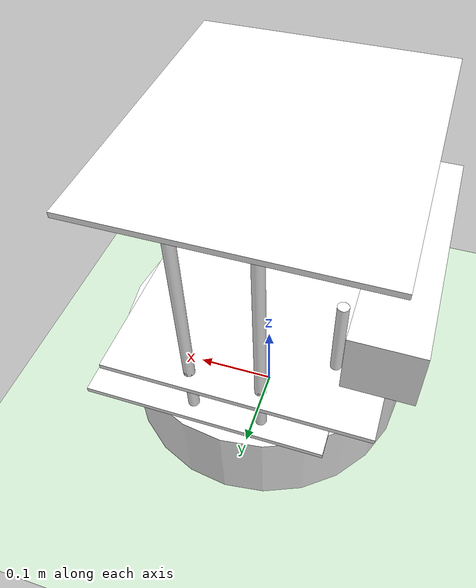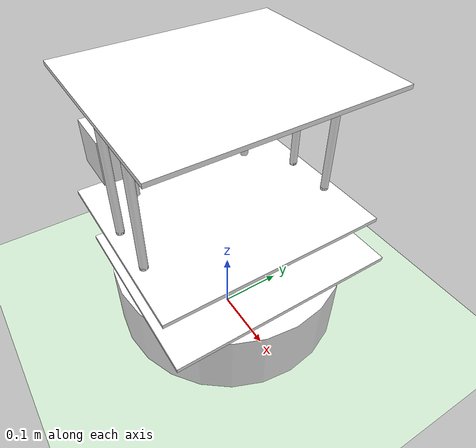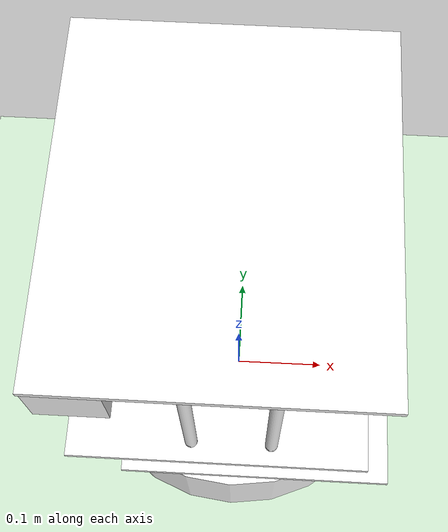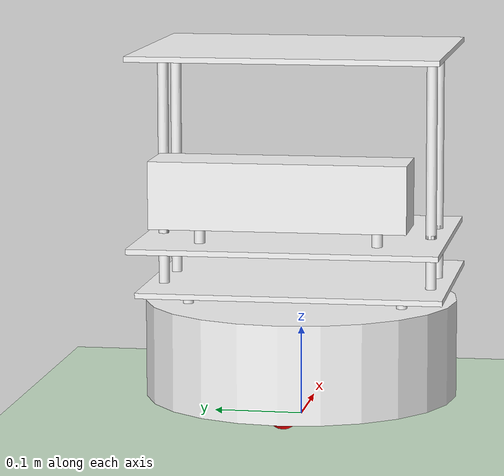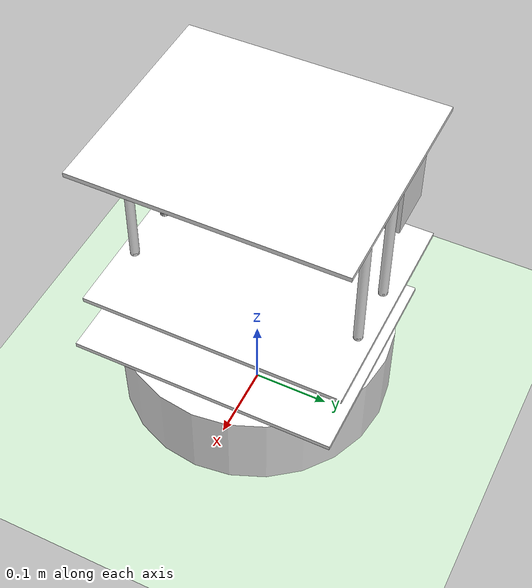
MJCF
<mujoco model="turtlebot">
    <compiler angle="radian" />
    <size njmax="500" nconmax="100" nuserdata="100" nuser_actuator="8" />

    <default>
        <geom condim="6" density="5" rgba="1 0 0 1" size=".05" type="sphere"/>
        <joint damping=".001"/>
        <motor ctrlrange="-1 1" ctrllimited="true" forcerange="-.02 .02" forcelimited="true"/>
        <site size="0.032" type="sphere"/>
    </default>

    <asset>
        <texture builtin="gradient" height="100" rgb1=".4 .5 .6" rgb2="0 0 0" type="skybox" width="100" />
        <texture builtin="flat" height="1278" mark="cross" markrgb="1 1 1" name="texgeom" random="0.01" rgb1="0.8 0.6 0.4" rgb2="0.8 0.6 0.4" type="cube" width="127" />
        <texture builtin="checker" height="100" name="texplane" rgb1="0 0 0" rgb2="0.8 0.8 0.8" type="2d" width="100" />
        <material name="MatPlane" reflectance="0.5" shininess="1" specular="1" texrepeat="60 60" texture="texplane" />
        <material name="geom" texture="texgeom" texuniform="true" />
    </asset>

    <worldbody>
        <light cutoff="100" diffuse="1 1 1" dir="-0 0 -1.3" directional="true" exponent="1" pos="0 0 1.3" specular=".1 .1 .1" />
        <geom condim="6" material="MatPlane" name="floor" pos="0 0 0" rgba="0.8 0.9 0.8 1" size="20 20 .125" type="plane" />

        <body name="turtlebot" pos="0 0 0.02">
            <joint type="free" />
            <site name="turtlebot" pos="0 0 0"/>
            <geom size="0.176 0.05469" pos="0 0 0.05949" type="cylinder" rgba="1 1 1 1" />
            <geom size="0.006 0.0246" pos="0.12 0.082 0.1028" type="cylinder" rgba="1 1 1 1" />
            <geom size="0.006 0.0246" pos="0.055 0.12 0.1028" type="cylinder" rgba="1 1 1 1" />
            <geom size="0.006 0.0246" pos="-0.055 0.12 0.1028" type="cylinder" rgba="1 1 1 1" />
            <geom size="0.006 0.0246" pos="0.12 -0.082 0.1028" type="cylinder" rgba="1 1 1 1" />
            <geom size="0.006 0.0246" pos="0.055 -0.12 0.1028" type="cylinder" rgba="1 1 1 1" />
            <geom size="0.006 0.0246" pos="-0.055 -0.12 0.1028" type="cylinder" rgba="1 1 1 1" />
            <geom size="0.133635 0.17 0.003" pos="0.02364 0 0.1306" type="box" rgba="1 1 1 1" />
            <geom size="0.006 0.0304" pos="0.0381 0.1505 0.164" type="cylinder" rgba="1 1 1 1" />
            <geom size="0.006 0.0304" pos="0.0381 -0.1505 0.164" type="cylinder" rgba="1 1 1 1" />
            <geom size="0.006 0.0304" pos="-0.0381 0.1505 0.164" type="cylinder" rgba="1 1 1 1" />
            <geom size="0.006 0.0304" pos="-0.0381 -0.1505 0.164" type="cylinder" rgba="1 1 1 1" />
            <geom size="0.143635 0.17 0.003" pos="-0.01364 0 0.1874" type="box" rgba="1 1 1 1" />
            <geom size="0.006 0.1016" pos="0.0381 0.1505 0.292" type="cylinder" rgba="1 1 1 1" />
            <geom size="0.006 0.1016" pos="0.0381 -0.1505 0.292" type="cylinder" rgba="1 1 1 1" />
            <geom size="0.006 0.1016" pos="-0.0381 0.1505 0.292" type="cylinder" rgba="1 1 1 1" />
            <geom size="0.006 0.1016" pos="-0.0381 -0.1505 0.292" type="cylinder" rgba="1 1 1 1" />
            <geom size="0.006 0.0468" pos="-0.1024 0.098 0.2372" type="cylinder" rgba="1 1 1 1" />
            <geom size="0.006 0.0468" pos="-0.1024 -0.098 0.2372" type="cylinder" rgba="1 1 1 1" />
            <geom size="0.143635 0.17 0.003" pos="-0.01364 0 0.3966" type="box" rgba="1 1 1 1" />
            <geom size="0.036355 0.13897 0.0365" pos="-0.1495 0 0.254" type="box" rgba="1 1 1 1" />
            <body name="front_w" pos="0.115 0 0.007" >
                <joint type="ball"/>
                <geom size="0.017 0.0088" quat="0.707107 -0.707107 0 0" type="sphere" condim="6" />
            </body>
            <body name="rear_w" pos="-0.135 0 0.009" >
                <joint type="ball"/>
                <geom size="0.017 0.0088" quat="0.707107 -0.707107 0 0" type="sphere" condim="6" />
            </body>
            <body name="wheel_left_link" pos="0 0.115 0.025" quat="0.707107 -0.707107 0 0">
                <joint name="wheel_left_joint" type="hinge" pos="0 0 0" axis="0 0 1" damping="0.001" />
                <geom size="0.0352 0.0103" type="cylinder" rgba="1 1 1 1" condim="6" />
            </body>
            <body name="wheel_right_link" pos="0 -0.115 0.025" quat="0.707107 -0.707107 0 0">
                <joint name="wheel_right_joint" type="hinge" pos="0 0 0" axis="0 0 1" damping="0.001" />
                <geom size="0.035 0.0103" type="cylinder" rgba="1 1 1 1" condim="6" />
            </body>
        </body>
    </worldbody>

	<actuator>
		<motor gear="1" ctrllimited="true" ctrlrange="-1 1" forcelimited="true" forcerange='-0.02 0.02' joint="wheel_left_joint" name="blw_motor" />
		<motor gear="1" ctrllimited="true" ctrlrange="-1 1" forcelimited="true" forcerange='-0.02 0.02' joint="wheel_right_joint" name="brw_motor" />
        <!-- PID implementation below. gainprm: kp, ti, iclamp, td, dsmooth, 0-->

	</actuator>
    <sensor>
        <!-- Used for observation -->
        <accelerometer site="turtlebot" name="accelerometer"/>
        <velocimeter site="turtlebot" name="velocimeter"/>
        <gyro site="turtlebot" name="gyro"/>
        <magnetometer site="turtlebot" name="magnetometer"/>
    </sensor>

</mujoco>
